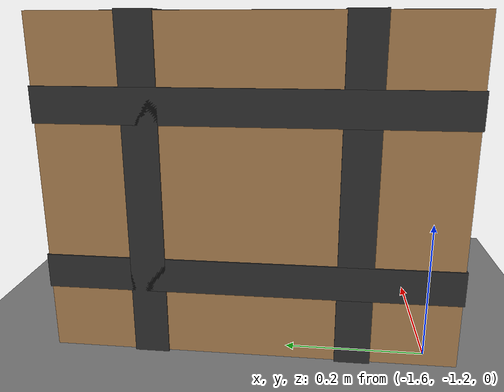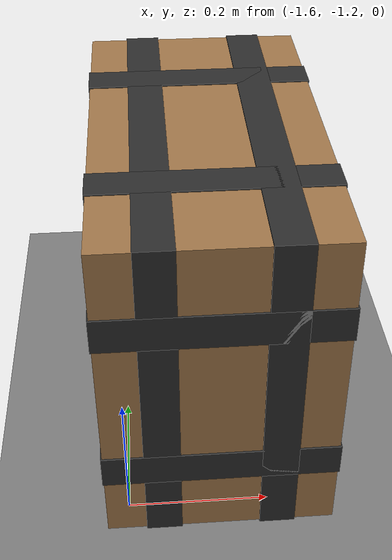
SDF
<sdf version="1.9">
 <world name="ecps295_lowbox_s16_monitor">
  <model name="ground_plane">
   <static>true</static>
   <link name="link">
    <collision name="collision">
     <geometry><plane><normal>0 0 1</normal><size>50 50</size></plane></geometry>
    </collision>
    <visual name="visual">
     <geometry><plane><normal>0 0 1</normal><size>50 50</size></plane></geometry>
     <material><ambient>0.5 0.5 0.5 1</ambient><diffuse>0.5 0.5 0.5 1</diffuse></material>
    </visual>
   </link>
  </model>
  <model name="lb4">
   <static>true</static>
   <pose>-1.47 -0.95 0.242 0 0 0</pose>
   <link name="link">
    <collision name="c"><geometry><box><size>0.32 0.58 0.48</size></box></geometry></collision>
    <visual name="v">
     <geometry><box><size>0.32 0.58 0.48</size></box></geometry>
     <material><ambient>0.65 0.48 0.30 1</ambient><diffuse>0.65 0.48 0.30 1</diffuse></material>
    </visual>
    <visual name="tape_ring0">
     <pose>0.000 0.000 -0.120 0 0 0</pose>
     <geometry><box><size>0.324 0.584 0.050</size></box></geometry>
     <material><ambient>0.18 0.18 0.18 1</ambient><diffuse>0.18 0.18 0.18 1</diffuse></material>
    </visual>
    <visual name="tape_bx0">
     <pose>-0.080 0.000 0.000 0 0 0</pose>
     <geometry><box><size>0.050 0.584 0.484</size></box></geometry>
     <material><ambient>0.18 0.18 0.18 1</ambient><diffuse>0.18 0.18 0.18 1</diffuse></material>
    </visual>
    <visual name="tape_by0">
     <pose>0.000 -0.145 0.000 0 0 0</pose>
     <geometry><box><size>0.324 0.050 0.484</size></box></geometry>
     <material><ambient>0.18 0.18 0.18 1</ambient><diffuse>0.18 0.18 0.18 1</diffuse></material>
    </visual>
    <visual name="tape_ring1">
     <pose>0.000 0.000 0.120 0 0 0</pose>
     <geometry><box><size>0.324 0.584 0.050</size></box></geometry>
     <material><ambient>0.18 0.18 0.18 1</ambient><diffuse>0.18 0.18 0.18 1</diffuse></material>
    </visual>
    <visual name="tape_bx1">
     <pose>0.080 0.000 0.000 0 0 0</pose>
     <geometry><box><size>0.050 0.584 0.484</size></box></geometry>
     <material><ambient>0.18 0.18 0.18 1</ambient><diffuse>0.18 0.18 0.18 1</diffuse></material>
    </visual>
    <visual name="tape_by1">
     <pose>0.000 0.145 0.000 0 0 0</pose>
     <geometry><box><size>0.324 0.050 0.484</size></box></geometry>
     <material><ambient>0.18 0.18 0.18 1</ambient><diffuse>0.18 0.18 0.18 1</diffuse></material>
    </visual>
   </link>
  </model>
 </world>
</sdf>
